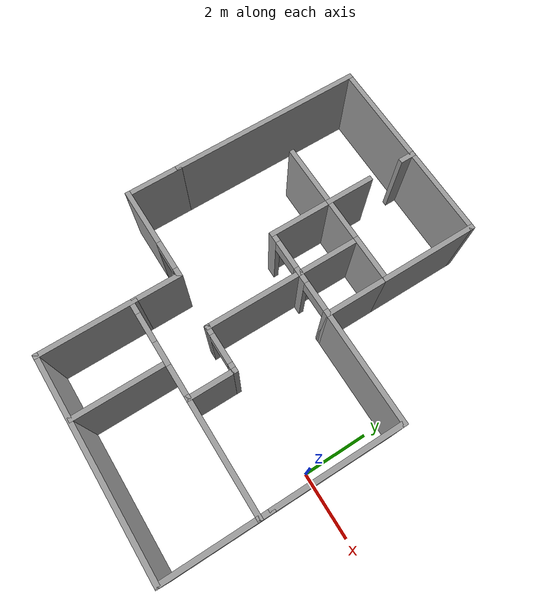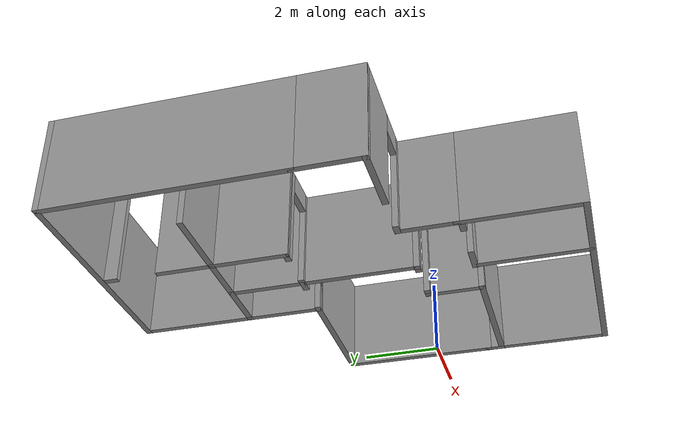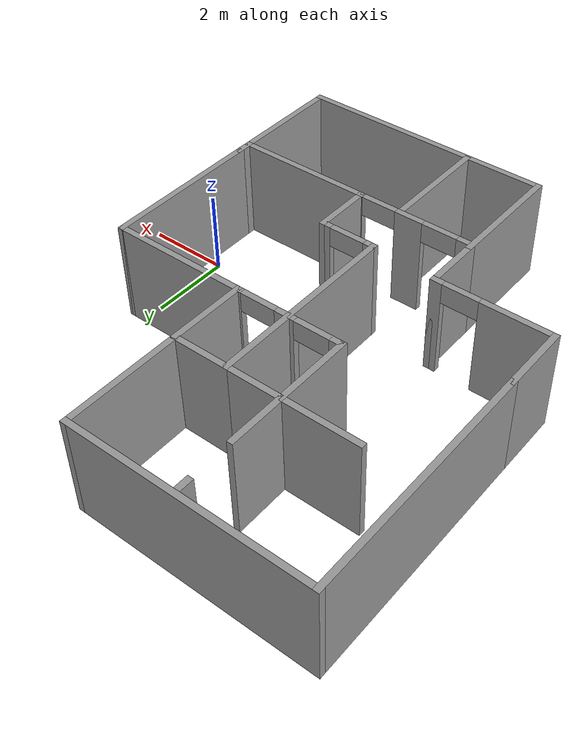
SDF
<?xml version='1.0'?>
<sdf version='1.7'>
  <model name='casa'>
    <pose>-4.24953 1.36338 0 0 -0 0</pose>
    <link name='Wall_11'>
      <collision name='Wall_11_Collision'>
        <geometry>
          <box>
            <size>1.5 0.15 2.5</size>
          </box>
        </geometry>
        <pose>0 0 1.25 0 -0 0</pose>
      </collision>
      <visual name='Wall_11_Visual'>
        <pose>0 0 1.25 0 -0 0</pose>
        <geometry>
          <box>
            <size>1.5 0.15 2.5</size>
          </box>
        </geometry>
        <material>
          <script>
            <uri>file://media/materials/scripts/gazebo.material</uri>
            <name>Gazebo/Grey</name>
          </script>
          <ambient>1 1 1 1</ambient>
        </material>
        <meta>
          <layer>0</layer>
        </meta>
      </visual>
      <pose>1.25 -2.4 0 0 -0 1.5708</pose>
    </link>
    <link name='Wall_114'>
      <collision name='Wall_114_Collision'>
        <geometry>
          <box>
            <size>6 0.15 2.5</size>
          </box>
        </geometry>
        <pose>0 0 1.25 0 -0 0</pose>
      </collision>
      <visual name='Wall_114_Visual'>
        <pose>0 0 1.25 0 -0 0</pose>
        <geometry>
          <box>
            <size>6 0.15 2.5</size>
          </box>
        </geometry>
        <material>
          <script>
            <uri>file://media/materials/scripts/gazebo.material</uri>
            <name>Gazebo/Grey</name>
          </script>
          <ambient>1 1 1 1</ambient>
        </material>
        <meta>
          <layer>0</layer>
        </meta>
      </visual>
      <pose>-1.675 5.825 0 0 -0 3.14159</pose>
    </link>
    <link name='Wall_116'>
      <collision name='Wall_116_Collision'>
        <geometry>
          <box>
            <size>6 0.15 2.5</size>
          </box>
        </geometry>
        <pose>0 0 1.25 0 -0 0</pose>
      </collision>
      <visual name='Wall_116_Visual'>
        <pose>0 0 1.25 0 -0 0</pose>
        <geometry>
          <box>
            <size>6 0.15 2.5</size>
          </box>
        </geometry>
        <material>
          <script>
            <uri>file://media/materials/scripts/gazebo.material</uri>
            <name>Gazebo/Grey</name>
          </script>
          <ambient>1 1 1 1</ambient>
        </material>
        <meta>
          <layer>0</layer>
        </meta>
      </visual>
      <pose>-4.6 2.9 0 0 -0 -1.5708</pose>
    </link>
    <link name='Wall_118'>
      <collision name='Wall_118_Collision'>
        <geometry>
          <box>
            <size>1.75 0.15 2.5</size>
          </box>
        </geometry>
        <pose>0 0 1.25 0 -0 0</pose>
      </collision>
      <visual name='Wall_118_Visual'>
        <pose>0 0 1.25 0 -0 0</pose>
        <geometry>
          <box>
            <size>1.75 0.15 2.5</size>
          </box>
        </geometry>
        <material>
          <script>
            <uri>file://media/materials/scripts/gazebo.material</uri>
            <name>Gazebo/Grey</name>
          </script>
          <ambient>1 1 1 1</ambient>
        </material>
        <meta>
          <layer>0</layer>
        </meta>
      </visual>
      <pose>-4.6 -0.825 0 0 -0 -1.5708</pose>
    </link>
    <link name='Wall_12'>
      <pose>0.575 -1.725 0 0 -0 3.14159</pose>
      <visual name='Wall_12_Visual_0'>
        <pose>-0.60025 0 1.25 0 -0 0</pose>
        <geometry>
          <box>
            <size>0.2995 0.15 2.5</size>
          </box>
        </geometry>
        <material>
          <script>
            <uri>file://media/materials/scripts/gazebo.material</uri>
            <name>Gazebo/Grey</name>
          </script>
          <ambient>1 1 1 1</ambient>
        </material>
        <meta>
          <layer>0</layer>
        </meta>
      </visual>
      <collision name='Wall_12_Collision_0'>
        <geometry>
          <box>
            <size>0.2995 0.15 2.5</size>
          </box>
        </geometry>
        <pose>-0.60025 0 1.25 0 -0 0</pose>
      </collision>
      <visual name='Wall_12_Visual_1'>
        <pose>0.59975 0 1.25 0 -0 0</pose>
        <geometry>
          <box>
            <size>0.3005 0.15 2.5</size>
          </box>
        </geometry>
        <material>
          <script>
            <uri>file://media/materials/scripts/gazebo.material</uri>
            <name>Gazebo/Grey</name>
          </script>
          <ambient>1 1 1 1</ambient>
        </material>
        <meta>
          <layer>0</layer>
        </meta>
      </visual>
      <collision name='Wall_12_Collision_1'>
        <geometry>
          <box>
            <size>0.3005 0.15 2.5</size>
          </box>
        </geometry>
        <pose>0.59975 0 1.25 0 -0 0</pose>
      </collision>
      <visual name='Wall_12_Visual_2'>
        <pose>-0.0005 0 2.25 0 -0 0</pose>
        <geometry>
          <box>
            <size>0.9 0.15 0.5</size>
          </box>
        </geometry>
        <material>
          <script>
            <uri>file://media/materials/scripts/gazebo.material</uri>
            <name>Gazebo/Grey</name>
          </script>
          <ambient>1 1 1 1</ambient>
        </material>
        <meta>
          <layer>0</layer>
        </meta>
      </visual>
      <collision name='Wall_12_Collision_2'>
        <geometry>
          <box>
            <size>0.9 0.15 0.5</size>
          </box>
        </geometry>
        <pose>-0.0005 0 2.25 0 -0 0</pose>
      </collision>
    </link>
    <link name='Wall_121'>
      <pose>-3.175 -1.625 0 0 -0 0</pose>
      <visual name='Wall_121_Visual_0'>
        <pose>-0.599676 0 1.25 0 -0 0</pose>
        <geometry>
          <box>
            <size>1.80065 0.15 2.5</size>
          </box>
        </geometry>
        <material>
          <script>
            <uri>file://media/materials/scripts/gazebo.material</uri>
            <name>Gazebo/Grey</name>
          </script>
          <ambient>1 1 1 1</ambient>
        </material>
        <meta>
          <layer>0</layer>
        </meta>
      </visual>
      <collision name='Wall_121_Collision_0'>
        <geometry>
          <box>
            <size>1.80065 0.15 2.5</size>
          </box>
        </geometry>
        <pose>-0.599676 0 1.25 0 -0 0</pose>
      </collision>
      <visual name='Wall_121_Visual_1'>
        <pose>1.35032 0 1.25 0 -0 0</pose>
        <geometry>
          <box>
            <size>0.299352 0.15 2.5</size>
          </box>
        </geometry>
        <material>
          <script>
            <uri>file://media/materials/scripts/gazebo.material</uri>
            <name>Gazebo/Grey</name>
          </script>
          <ambient>1 1 1 1</ambient>
        </material>
        <meta>
          <layer>0</layer>
        </meta>
      </visual>
      <collision name='Wall_121_Collision_1'>
        <geometry>
          <box>
            <size>0.299352 0.15 2.5</size>
          </box>
        </geometry>
        <pose>1.35032 0 1.25 0 -0 0</pose>
      </collision>
      <visual name='Wall_121_Visual_2'>
        <pose>0.750648 0 2.25 0 -0 0</pose>
        <geometry>
          <box>
            <size>0.9 0.15 0.5</size>
          </box>
        </geometry>
        <material>
          <script>
            <uri>file://media/materials/scripts/gazebo.material</uri>
            <name>Gazebo/Grey</name>
          </script>
          <ambient>1 1 1 1</ambient>
        </material>
        <meta>
          <layer>0</layer>
        </meta>
      </visual>
      <collision name='Wall_121_Collision_2'>
        <geometry>
          <box>
            <size>0.9 0.15 0.5</size>
          </box>
        </geometry>
        <pose>0.750648 0 2.25 0 -0 0</pose>
      </collision>
    </link>
    <link name='Wall_127'>
      <pose>-0.174999 -3.075 0 0 -0 3.14159</pose>
      <visual name='Wall_127_Visual_0'>
        <pose>-1.41461 0 1.25 0 -0 0</pose>
        <geometry>
          <box>
            <size>0.170785 0.15 2.5</size>
          </box>
        </geometry>
        <material>
          <script>
            <uri>file://media/materials/scripts/gazebo.material</uri>
            <name>Gazebo/Grey</name>
          </script>
          <ambient>1 1 1 1</ambient>
        </material>
        <meta>
          <layer>0</layer>
        </meta>
      </visual>
      <collision name='Wall_127_Collision_0'>
        <geometry>
          <box>
            <size>0.170785 0.15 2.5</size>
          </box>
        </geometry>
        <pose>-1.41461 0 1.25 0 -0 0</pose>
      </collision>
      <visual name='Wall_127_Visual_1'>
        <pose>-0.065047 0 1.25 0 -0 0</pose>
        <geometry>
          <box>
            <size>0.728337 0.15 2.5</size>
          </box>
        </geometry>
        <material>
          <script>
            <uri>file://media/materials/scripts/gazebo.material</uri>
            <name>Gazebo/Grey</name>
          </script>
          <ambient>1 1 1 1</ambient>
        </material>
        <meta>
          <layer>0</layer>
        </meta>
      </visual>
      <collision name='Wall_127_Collision_1'>
        <geometry>
          <box>
            <size>0.728337 0.15 2.5</size>
          </box>
        </geometry>
        <pose>-0.065047 0 1.25 0 -0 0</pose>
      </collision>
      <visual name='Wall_127_Visual_2'>
        <pose>1.34956 0 1.25 0 -0 0</pose>
        <geometry>
          <box>
            <size>0.300878 0.15 2.5</size>
          </box>
        </geometry>
        <material>
          <script>
            <uri>file://media/materials/scripts/gazebo.material</uri>
            <name>Gazebo/Grey</name>
          </script>
          <ambient>1 1 1 1</ambient>
        </material>
        <meta>
          <layer>0</layer>
        </meta>
      </visual>
      <collision name='Wall_127_Collision_2'>
        <geometry>
          <box>
            <size>0.300878 0.15 2.5</size>
          </box>
        </geometry>
        <pose>1.34956 0 1.25 0 -0 0</pose>
      </collision>
      <visual name='Wall_127_Visual_3'>
        <pose>-0.879215 0 2.25 0 -0 0</pose>
        <geometry>
          <box>
            <size>0.9 0.15 0.5</size>
          </box>
        </geometry>
        <material>
          <script>
            <uri>file://media/materials/scripts/gazebo.material</uri>
            <name>Gazebo/Grey</name>
          </script>
          <ambient>1 1 1 1</ambient>
        </material>
        <meta>
          <layer>0</layer>
        </meta>
      </visual>
      <collision name='Wall_127_Collision_3'>
        <geometry>
          <box>
            <size>0.9 0.15 0.5</size>
          </box>
        </geometry>
        <pose>-0.879215 0 2.25 0 -0 0</pose>
      </collision>
      <visual name='Wall_127_Visual_4'>
        <pose>0.749122 0 2.25 0 -0 0</pose>
        <geometry>
          <box>
            <size>0.9 0.15 0.5</size>
          </box>
        </geometry>
        <material>
          <script>
            <uri>file://media/materials/scripts/gazebo.material</uri>
            <name>Gazebo/Grey</name>
          </script>
          <ambient>1 1 1 1</ambient>
        </material>
        <meta>
          <layer>0</layer>
        </meta>
      </visual>
      <collision name='Wall_127_Collision_4'>
        <geometry>
          <box>
            <size>0.9 0.15 0.5</size>
          </box>
        </geometry>
        <pose>0.749122 0 2.25 0 -0 0</pose>
      </collision>
    </link>
    <link name='Wall_129'>
      <collision name='Wall_129_Collision'>
        <geometry>
          <box>
            <size>1.5 0.15 2.5</size>
          </box>
        </geometry>
        <pose>0 0 1.25 0 -0 0</pose>
      </collision>
      <visual name='Wall_129_Visual'>
        <pose>0 0 1.25 0 -0 0</pose>
        <geometry>
          <box>
            <size>1.5 0.15 2.5</size>
          </box>
        </geometry>
        <material>
          <script>
            <uri>file://media/materials/scripts/gazebo.material</uri>
            <name>Gazebo/Grey</name>
          </script>
          <ambient>1 1 1 1</ambient>
        </material>
        <meta>
          <layer>0</layer>
        </meta>
      </visual>
      <pose>-1.75 -2.3 0 0 -0 -1.5708</pose>
    </link>
    <link name='Wall_131'>
      <collision name='Wall_131_Collision'>
        <geometry>
          <box>
            <size>2 0.15 2.5</size>
          </box>
        </geometry>
        <pose>0 0 1.25 0 -0 0</pose>
      </collision>
      <visual name='Wall_131_Visual'>
        <pose>0 0 1.25 0 -0 0</pose>
        <geometry>
          <box>
            <size>2 0.15 2.5</size>
          </box>
        </geometry>
        <material>
          <script>
            <uri>file://media/materials/scripts/gazebo.material</uri>
            <name>Gazebo/Grey</name>
          </script>
          <ambient>1 1 1 1</ambient>
        </material>
        <meta>
          <layer>0</layer>
        </meta>
      </visual>
      <pose>-2.375 2.975 0 0 -0 3.14159</pose>
    </link>
    <link name='Wall_133'>
      <collision name='Wall_133_Collision'>
        <geometry>
          <box>
            <size>1.5 0.15 2.5</size>
          </box>
        </geometry>
        <pose>0 0 1.25 0 -0 0</pose>
      </collision>
      <visual name='Wall_133_Visual'>
        <pose>0 0 1.25 0 -0 0</pose>
        <geometry>
          <box>
            <size>1.5 0.15 2.5</size>
          </box>
        </geometry>
        <material>
          <script>
            <uri>file://media/materials/scripts/gazebo.material</uri>
            <name>Gazebo/Grey</name>
          </script>
          <ambient>1 1 1 1</ambient>
        </material>
        <meta>
          <layer>0</layer>
        </meta>
      </visual>
      <pose>-1.45 3.65 0 0 -0 1.5708</pose>
    </link>
    <link name='Wall_189'>
      <collision name='Wall_189_Collision'>
        <geometry>
          <box>
            <size>0.5 0.15 2.5</size>
          </box>
        </geometry>
        <pose>0 0 1.25 0 -0 0</pose>
      </collision>
      <visual name='Wall_189_Visual'>
        <pose>0 0 1.25 0 -0 0</pose>
        <geometry>
          <box>
            <size>0.5 0.15 2.5</size>
          </box>
        </geometry>
        <material>
          <script>
            <uri>file://media/materials/scripts/gazebo.material</uri>
            <name>Gazebo/Grey</name>
          </script>
          <ambient>1 1 1 1</ambient>
        </material>
        <meta>
          <layer>0</layer>
        </meta>
      </visual>
      <pose>-1.45131 5.64561 0 0 -0 -1.5708</pose>
    </link>
    <link name='Wall_19'>
      <collision name='Wall_19_Collision'>
        <geometry>
          <box>
            <size>3 0.15 2.5</size>
          </box>
        </geometry>
        <pose>0 0 1.25 0 -0 0</pose>
      </collision>
      <visual name='Wall_19_Visual'>
        <pose>0 0 1.25 0 -0 0</pose>
        <geometry>
          <box>
            <size>3 0.15 2.5</size>
          </box>
        </geometry>
        <material>
          <script>
            <uri>file://media/materials/scripts/gazebo.material</uri>
            <name>Gazebo/Grey</name>
          </script>
          <ambient>1 1 1 1</ambient>
        </material>
        <meta>
          <layer>0</layer>
        </meta>
      </visual>
      <pose>-0.1 -0.3 0 0 -0 1.5708</pose>
    </link>
    <link name='Wall_192'>
      <collision name='Wall_192_Collision'>
        <geometry>
          <box>
            <size>3 0.15 2.5</size>
          </box>
        </geometry>
        <pose>0 0 1.25 0 -0 0</pose>
      </collision>
      <visual name='Wall_192_Visual'>
        <pose>0 0 1.25 0 -0 0</pose>
        <geometry>
          <box>
            <size>3 0.15 2.5</size>
          </box>
        </geometry>
        <material>
          <script>
            <uri>file://media/materials/scripts/gazebo.material</uri>
            <name>Gazebo/Grey</name>
          </script>
          <ambient>1 1 1 1</ambient>
        </material>
        <meta>
          <layer>0</layer>
        </meta>
      </visual>
      <pose>-1.75 -4.4 0 0 -0 -1.5708</pose>
    </link>
    <link name='Wall_193'>
      <collision name='Wall_193_Collision'>
        <geometry>
          <box>
            <size>6.5 0.15 2.5</size>
          </box>
        </geometry>
        <pose>0 0 1.25 0 -0 0</pose>
      </collision>
      <visual name='Wall_193_Visual'>
        <pose>0 0 1.25 0 -0 0</pose>
        <geometry>
          <box>
            <size>6.5 0.15 2.5</size>
          </box>
        </geometry>
        <material>
          <script>
            <uri>file://media/materials/scripts/gazebo.material</uri>
            <name>Gazebo/Grey</name>
          </script>
          <ambient>1 1 1 1</ambient>
        </material>
        <meta>
          <layer>0</layer>
        </meta>
      </visual>
      <pose>1.425 -5.825 0 0 -0 0</pose>
    </link>
    <link name='Wall_194'>
      <collision name='Wall_194_Collision'>
        <geometry>
          <box>
            <size>2.9 0.15 2.5</size>
          </box>
        </geometry>
        <pose>0 0 1.25 0 -0 0</pose>
      </collision>
      <visual name='Wall_194_Visual'>
        <pose>0 0 1.25 0 -0 0</pose>
        <geometry>
          <box>
            <size>2.9 0.15 2.5</size>
          </box>
        </geometry>
        <material>
          <script>
            <uri>file://media/materials/scripts/gazebo.material</uri>
            <name>Gazebo/Grey</name>
          </script>
          <ambient>1 1 1 1</ambient>
        </material>
        <meta>
          <layer>0</layer>
        </meta>
      </visual>
      <pose>4.6 -4.45 0 0 -0 1.5708</pose>
    </link>
    <link name='Wall_197'>
      <collision name='Wall_197_Collision'>
        <geometry>
          <box>
            <size>2.75 0.15 2.5</size>
          </box>
        </geometry>
        <pose>0 0 1.25 0 -0 0</pose>
      </collision>
      <visual name='Wall_197_Visual'>
        <pose>0 0 1.25 0 -0 0</pose>
        <geometry>
          <box>
            <size>2.75 0.15 2.5</size>
          </box>
        </geometry>
        <material>
          <script>
            <uri>file://media/materials/scripts/gazebo.material</uri>
            <name>Gazebo/Grey</name>
          </script>
          <ambient>1 1 1 1</ambient>
        </material>
        <meta>
          <layer>0</layer>
        </meta>
      </visual>
      <pose>0.161437 -4.4811 0 0 -0 -1.5708</pose>
    </link>
    <link name='Wall_20'>
      <pose>0.575 1.125 0 0 -0 0</pose>
      <visual name='Wall_20_Visual_0'>
        <pose>-0.552284 0 1.25 0 -0 0</pose>
        <geometry>
          <box>
            <size>0.395433 0.15 2.5</size>
          </box>
        </geometry>
        <material>
          <script>
            <uri>file://media/materials/scripts/gazebo.material</uri>
            <name>Gazebo/Grey</name>
          </script>
          <ambient>1 1 1 1</ambient>
        </material>
        <meta>
          <layer>0</layer>
        </meta>
      </visual>
      <collision name='Wall_20_Collision_0'>
        <geometry>
          <box>
            <size>0.395433 0.15 2.5</size>
          </box>
        </geometry>
        <pose>-0.552284 0 1.25 0 -0 0</pose>
      </collision>
      <visual name='Wall_20_Visual_1'>
        <pose>0.647716 0 1.25 0 -0 0</pose>
        <geometry>
          <box>
            <size>0.204567 0.15 2.5</size>
          </box>
        </geometry>
        <material>
          <script>
            <uri>file://media/materials/scripts/gazebo.material</uri>
            <name>Gazebo/Grey</name>
          </script>
          <ambient>1 1 1 1</ambient>
        </material>
        <meta>
          <layer>0</layer>
        </meta>
      </visual>
      <collision name='Wall_20_Collision_1'>
        <geometry>
          <box>
            <size>0.204567 0.15 2.5</size>
          </box>
        </geometry>
        <pose>0.647716 0 1.25 0 -0 0</pose>
      </collision>
      <visual name='Wall_20_Visual_2'>
        <pose>0.095433 0 2.25 0 -0 0</pose>
        <geometry>
          <box>
            <size>0.9 0.15 0.5</size>
          </box>
        </geometry>
        <material>
          <script>
            <uri>file://media/materials/scripts/gazebo.material</uri>
            <name>Gazebo/Grey</name>
          </script>
          <ambient>1 1 1 1</ambient>
        </material>
        <meta>
          <layer>0</layer>
        </meta>
      </visual>
      <collision name='Wall_20_Collision_2'>
        <geometry>
          <box>
            <size>0.9 0.15 0.5</size>
          </box>
        </geometry>
        <pose>0.095433 0 2.25 0 -0 0</pose>
      </collision>
    </link>
    <link name='Wall_22'>
      <collision name='Wall_22_Collision'>
        <geometry>
          <box>
            <size>2 0.15 2.5</size>
          </box>
        </geometry>
        <pose>0 0 1.25 0 -0 0</pose>
      </collision>
      <visual name='Wall_22_Visual'>
        <pose>0 0 1.25 0 -0 0</pose>
        <geometry>
          <box>
            <size>2 0.15 2.5</size>
          </box>
        </geometry>
        <material>
          <script>
            <uri>file://media/materials/scripts/gazebo.material</uri>
            <name>Gazebo/Grey</name>
          </script>
          <ambient>1 1 1 1</ambient>
        </material>
        <meta>
          <layer>0</layer>
        </meta>
      </visual>
      <pose>-0.1 2.05 0 0 -0 1.5708</pose>
    </link>
    <link name='Wall_23'>
      <collision name='Wall_23_Collision'>
        <geometry>
          <box>
            <size>1.5 0.15 2.5</size>
          </box>
        </geometry>
        <pose>0 0 1.25 0 -0 0</pose>
      </collision>
      <visual name='Wall_23_Visual'>
        <pose>0 0 1.25 0 -0 0</pose>
        <geometry>
          <box>
            <size>1.5 0.15 2.5</size>
          </box>
        </geometry>
        <material>
          <script>
            <uri>file://media/materials/scripts/gazebo.material</uri>
            <name>Gazebo/Grey</name>
          </script>
          <ambient>1 1 1 1</ambient>
        </material>
        <meta>
          <layer>0</layer>
        </meta>
      </visual>
      <pose>0.575 2.975 0 0 -0 0</pose>
    </link>
    <link name='Wall_24'>
      <collision name='Wall_24_Collision'>
        <geometry>
          <box>
            <size>2 0.15 2.5</size>
          </box>
        </geometry>
        <pose>0 0 1.25 0 -0 0</pose>
      </collision>
      <visual name='Wall_24_Visual'>
        <pose>0 0 1.25 0 -0 0</pose>
        <geometry>
          <box>
            <size>2 0.15 2.5</size>
          </box>
        </geometry>
        <material>
          <script>
            <uri>file://media/materials/scripts/gazebo.material</uri>
            <name>Gazebo/Grey</name>
          </script>
          <ambient>1 1 1 1</ambient>
        </material>
        <meta>
          <layer>0</layer>
        </meta>
      </visual>
      <pose>1.25 2.05 0 0 -0 -1.5708</pose>
    </link>
    <link name='Wall_25'>
      <collision name='Wall_25_Collision'>
        <geometry>
          <box>
            <size>3.5 0.15 2.5</size>
          </box>
        </geometry>
        <pose>0 0 1.25 0 -0 0</pose>
      </collision>
      <visual name='Wall_25_Visual'>
        <pose>0 0 1.25 0 -0 0</pose>
        <geometry>
          <box>
            <size>3.5 0.15 2.5</size>
          </box>
        </geometry>
        <material>
          <script>
            <uri>file://media/materials/scripts/gazebo.material</uri>
            <name>Gazebo/Grey</name>
          </script>
          <ambient>1 1 1 1</ambient>
        </material>
        <meta>
          <layer>0</layer>
        </meta>
      </visual>
      <pose>2.925 1.125 0 0 -0 0</pose>
    </link>
    <link name='Wall_28'>
      <collision name='Wall_28_Collision'>
        <geometry>
          <box>
            <size>4 0.15 2.5</size>
          </box>
        </geometry>
        <pose>0 0 1.25 0 -0 0</pose>
      </collision>
      <visual name='Wall_28_Visual'>
        <pose>0 0 1.25 0 -0 0</pose>
        <geometry>
          <box>
            <size>4 0.15 2.5</size>
          </box>
        </geometry>
        <material>
          <script>
            <uri>file://media/materials/scripts/gazebo.material</uri>
            <name>Gazebo/Grey</name>
          </script>
          <ambient>1 1 1 1</ambient>
        </material>
        <meta>
          <layer>0</layer>
        </meta>
      </visual>
      <pose>4.6 -0.8 0 0 -0 -1.5708</pose>
    </link>
    <link name='Wall_29'>
      <collision name='Wall_29_Collision'>
        <geometry>
          <box>
            <size>0.5 0.15 2.5</size>
          </box>
        </geometry>
        <pose>0 0 1.25 0 -0 0</pose>
      </collision>
      <visual name='Wall_29_Visual'>
        <pose>0 0 1.25 0 -0 0</pose>
        <geometry>
          <box>
            <size>0.5 0.15 2.5</size>
          </box>
        </geometry>
        <material>
          <script>
            <uri>file://media/materials/scripts/gazebo.material</uri>
            <name>Gazebo/Grey</name>
          </script>
          <ambient>1 1 1 1</ambient>
        </material>
        <meta>
          <layer>0</layer>
        </meta>
      </visual>
      <pose>4.6 -2.9 0 0 -0 -1.5708</pose>
    </link>
    <link name='Wall_30'>
      <collision name='Wall_30_Collision'>
        <geometry>
          <box>
            <size>3.5 0.15 2.5</size>
          </box>
        </geometry>
        <pose>0 0 1.25 0 -0 0</pose>
      </collision>
      <visual name='Wall_30_Visual'>
        <pose>0 0 1.25 0 -0 0</pose>
        <geometry>
          <box>
            <size>3.5 0.15 2.5</size>
          </box>
        </geometry>
        <material>
          <script>
            <uri>file://media/materials/scripts/gazebo.material</uri>
            <name>Gazebo/Grey</name>
          </script>
          <ambient>1 1 1 1</ambient>
        </material>
        <meta>
          <layer>0</layer>
        </meta>
      </visual>
      <pose>2.925 -3.075 0 0 -0 3.14159</pose>
    </link>
    <link name='Wall_52'>
      <collision name='Wall_52_Collision'>
        <geometry>
          <box>
            <size>3 0.15 2.5</size>
          </box>
        </geometry>
        <pose>0 0 1.25 0 -0 0</pose>
      </collision>
      <visual name='Wall_52_Visual'>
        <pose>0 0 1.25 0 -0 0</pose>
        <geometry>
          <box>
            <size>3 0.15 2.5</size>
          </box>
        </geometry>
        <material>
          <script>
            <uri>file://media/materials/scripts/gazebo.material</uri>
            <name>Gazebo/Grey</name>
          </script>
          <ambient>1 1 1 1</ambient>
        </material>
        <meta>
          <layer>0</layer>
        </meta>
      </visual>
      <pose>1.25 4.4 0 0 -0 1.5708</pose>
    </link>
    <link name='Wall_89'>
      <collision name='Wall_89_Collision'>
        <geometry>
          <box>
            <size>1.5 0.15 2.5</size>
          </box>
        </geometry>
        <pose>0 0 1.25 0 -0 0</pose>
      </collision>
      <visual name='Wall_89_Visual'>
        <pose>0 0 1.25 0 -0 0</pose>
        <geometry>
          <box>
            <size>1.5 0.15 2.5</size>
          </box>
        </geometry>
        <material>
          <script>
            <uri>file://media/materials/scripts/gazebo.material</uri>
            <name>Gazebo/Grey</name>
          </script>
          <ambient>1 1 1 1</ambient>
        </material>
        <meta>
          <layer>0</layer>
        </meta>
      </visual>
      <pose>-0.775 2.975 0 0 -0 3.14159</pose>
    </link>
    <link name='Wall_90'>
      <collision name='Wall_90_Collision'>
        <geometry>
          <box>
            <size>2 0.15 2.5</size>
          </box>
        </geometry>
        <pose>0 0 1.25 0 -0 0</pose>
      </collision>
      <visual name='Wall_90_Visual'>
        <pose>0 0 1.25 0 -0 0</pose>
        <geometry>
          <box>
            <size>2 0.15 2.5</size>
          </box>
        </geometry>
        <material>
          <script>
            <uri>file://media/materials/scripts/gazebo.material</uri>
            <name>Gazebo/Grey</name>
          </script>
          <ambient>1 1 1 1</ambient>
        </material>
        <meta>
          <layer>0</layer>
        </meta>
      </visual>
      <pose>-1.45 2.05 0 0 -0 -1.5708</pose>
    </link>
    <link name='Wall_91'>
      <pose>-0.775 1.125 0 0 -0 0</pose>
      <visual name='Wall_91_Visual_0'>
        <pose>-0.576553 0 1.25 0 -0 0</pose>
        <geometry>
          <box>
            <size>0.346893 0.15 2.5</size>
          </box>
        </geometry>
        <material>
          <script>
            <uri>file://media/materials/scripts/gazebo.material</uri>
            <name>Gazebo/Grey</name>
          </script>
          <ambient>1 1 1 1</ambient>
        </material>
        <meta>
          <layer>0</layer>
        </meta>
      </visual>
      <collision name='Wall_91_Collision_0'>
        <geometry>
          <box>
            <size>0.346893 0.15 2.5</size>
          </box>
        </geometry>
        <pose>-0.576553 0 1.25 0 -0 0</pose>
      </collision>
      <visual name='Wall_91_Visual_1'>
        <pose>0.623447 0 1.25 0 -0 0</pose>
        <geometry>
          <box>
            <size>0.253107 0.15 2.5</size>
          </box>
        </geometry>
        <material>
          <script>
            <uri>file://media/materials/scripts/gazebo.material</uri>
            <name>Gazebo/Grey</name>
          </script>
          <ambient>1 1 1 1</ambient>
        </material>
        <meta>
          <layer>0</layer>
        </meta>
      </visual>
      <collision name='Wall_91_Collision_1'>
        <geometry>
          <box>
            <size>0.253107 0.15 2.5</size>
          </box>
        </geometry>
        <pose>0.623447 0 1.25 0 -0 0</pose>
      </collision>
      <visual name='Wall_91_Visual_2'>
        <pose>0.046893 0 2.25 0 -0 0</pose>
        <geometry>
          <box>
            <size>0.9 0.15 0.5</size>
          </box>
        </geometry>
        <material>
          <script>
            <uri>file://media/materials/scripts/gazebo.material</uri>
            <name>Gazebo/Grey</name>
          </script>
          <ambient>1 1 1 1</ambient>
        </material>
        <meta>
          <layer>0</layer>
        </meta>
      </visual>
      <collision name='Wall_91_Collision_2'>
        <geometry>
          <box>
            <size>0.9 0.15 0.5</size>
          </box>
        </geometry>
        <pose>0.046893 0 2.25 0 -0 0</pose>
      </collision>
    </link>
    <static>1</static>
  </model>
</sdf>
